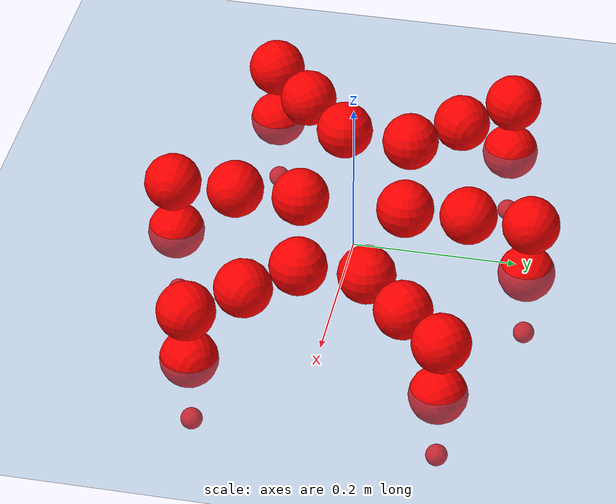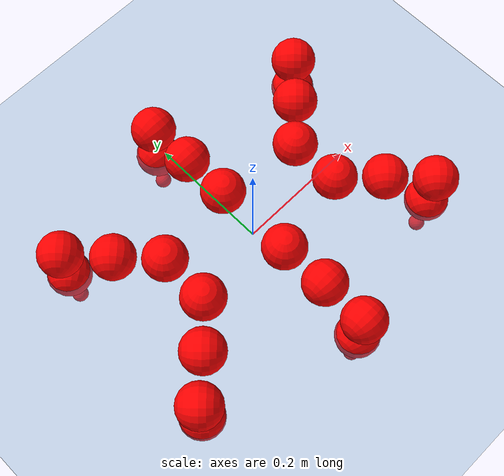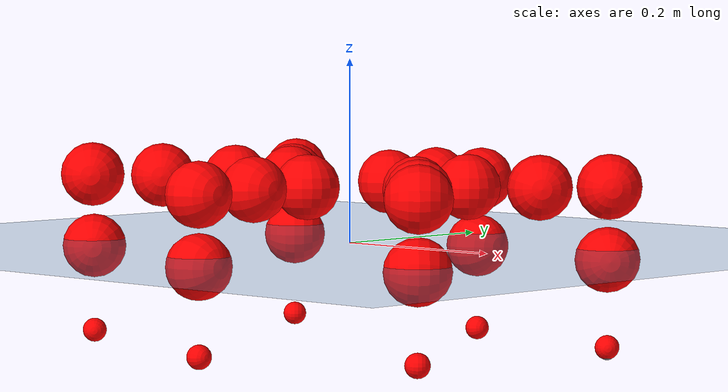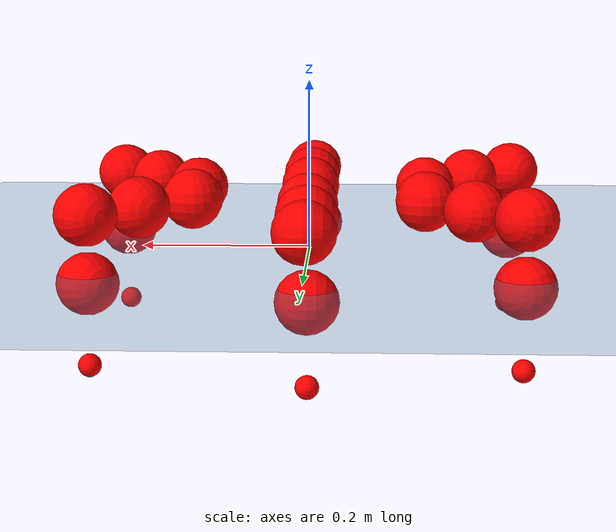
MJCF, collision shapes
<mujoco model="Golem">
  <compiler angle="radian" assetdir="assets" balanceinertia="true" inertiafromgeom="false"/>

  <option timestep="0.005" density="1.2" viscosity="2e-05"/>

  <size nkey="1"/>

  <visual>
    <quality shadowsize="8192"/>
    <map shadowclip="0.5"/>
  </visual>

  <default>
    <default class="/">
      <joint armature="0.01" damping="0.01" frictionloss="0.01"/>
      <geom contype="0" conaffinity="0" group="1" solref="-1000 -80"/>
      <site size="0.01 0.005 0.005" group="5"/>
      <general forcelimited="true" biastype="affine" gainprm="25" biasprm="0 -25 -0.5"/>
      <default class="visual">
        <geom type="mesh" group="2"/>
      </default>
      <default class="collision">
        <geom group="3"/>
      </default>
      <default class="foot">
        <geom size="0.01 0 0" condim="6" group="4" priority="1" solimp="0.015 1 0.01"/>
      </default>
      <default class="reward_collision_sphere">
        <geom group="5" rgba="1 0 0 1"/>
      </default>
    </default>
  </default>

  <asset>
    <texture type="skybox" colorspace="auto" name="//unnamed_texture_0" builtin="gradient" rgb1="0.95 0.95 0.95" rgb2="0.95 0.95 0.95" width="100" height="600"/>
    <texture type="2d" colorspace="auto" name="texplane" builtin="checker" rgb1="0.345 0.575 0.748" rgb2="0.345 0.575 0.748" markrgb="1 1 1" width="512" height="512"/>
    <material name="MatPlane" class="/" texture="texplane" texuniform="true" texrepeat="2 2" specular="0.9"/>
    <mesh name="body" class="/" file="body.stl" scale="0.001 0.001 0.001"/>
    <mesh name="coxa" class="/" file="coxa.stl" scale="0.001 0.001 0.001"/>
    <mesh name="femur" class="/" file="femur.stl" scale="0.001 0.001 0.001"/>
    <mesh name="tibia" class="/" file="tibia.stl" scale="0.001 0.001 0.001"/>
    <mesh name="tarsus" class="/" file="tarsus.stl" scale="0.001 0.001 0.001"/>
  </asset>

  <worldbody>
    <geom name="floor" class="/" size="100 100 0.125" type="plane" group="0" material="MatPlane"/>
    <light name="toplight_shadow" class="/" pos="0 0 5" dir="0.0990148 0.0990148 -0.990148" type="directional" ambient="0.04 0.04 0.04" diffuse="0.55 0.55 0.55" specular="0.12 0.12 0.12"/>
    <light name="toplight_fill" class="/" pos="0 0 5" dir="0.0990148 0.0990148 -0.990148" type="directional" castshadow="false" ambient="0.04 0.04 0.04" diffuse="0.3 0.3 0.3" specular="0.08 0.08 0.08"/>
    <body name="trunk" pos="-1.78132e-05 -2.95593e-05 -0.00178305" quat="0.999999 -0.00113422 -0.000326061 -0.000526025">
      <inertial pos="0.000306023 0.00224725 -0.00396265" quat="0.999932 0.00977684 -0.00598776 -0.0021564" mass="2.56473" diaginertia="0.00530281 0.00177601 0.0137409"/>
      <joint name="//unnamed_joint_0" type="free"/>
      <geom name="//unnamed_geom_1" class="/" pos="0 0 0.0676455" quat="1 0 0 0" type="mesh" rgba="0.9 0.9 0.9 1" mesh="body"/>
      <site name="imu" class="/" pos="0.101346 0.000692429 0.11742" size="0.00880451"/>
      <camera name="track" class="/" pos="0 -1.41795 0" quat="0.707107 0.707107 0 0" mode="trackcom"/>
      <camera name="ego_camera" class="/" pos="0.113804 0 0.105696" quat="-0.5 -0.5 0.5 0.5"/>
      <body name="coxa_RR" pos="-0.15741 -0.0575342 0.0697862" quat="0.382604 -0.000257787 0.000257491 -0.923912">
        <inertial pos="-0.00135294 -0.00274184 -0.000660164" quat="0.999935 -0.00100045 -0.0113746 0.000453978" mass="0.141591" diaginertia="0.00511785 0.00178492 0.0131086"/>
        <joint name="coxa_joint_RR" class="/" pos="0 0 0" axis="0.00188886 -0.00889422 -0.999959" range="-3.1908 3.13952" armature="0.00820922" damping="0.0186887" frictionloss="0.00980344"/>
        <geom name="//unnamed_geom_2" class="/" type="mesh" rgba="0.2 0.2 0.2 1" mesh="coxa"/>
        <geom name="//unnamed_geom_3" class="reward_collision_sphere" size="0.0352181" pos="-0.0262626 0 0"/>
        <body name="femur_RR" pos="0.0543216 0.00139245 0.00176413" quat="0.500046 -0.499946 0.499997 0.500011">
          <inertial pos="0.00112064 -0.00229358 0.00182155" quat="1 0.000911463 0.000162833 0.000355914" mass="0.134572" diaginertia="0.00511166 0.00176715 0.0127894"/>
          <joint name="femur_joint_RR" class="/" pos="0 0 0" axis="0.00833936 0.00746374 -0.999937" range="-3.11236 3.13186" armature="0.00773056" damping="0" frictionloss="0.00811153"/>
          <geom name="//unnamed_geom_4" class="/" type="mesh" rgba="0.9 0.9 0.9 1" mesh="femur"/>
          <geom name="//unnamed_geom_5" class="reward_collision_sphere" size="0.0352181"/>
          <body name="tibia_RR" pos="-0.000819842 -0.077838 -0.00272021" quat="-3.5176e-05 1 2.11038e-05 3.71634e-05">
            <inertial pos="-0.00259232 0.00216377 -0.00180628" quat="0.999939 -0.0106297 0.00291403 -0.00046721" mass="0.13364" diaginertia="0.00482168 0.00171946 0.0127743"/>
            <joint name="tibia_joint_RR" class="/" pos="0 0 0" axis="-0.00488883 0.00332521 0.999983" range="-3.1371 3.08391" armature="0.00903425" damping="0.0185001" frictionloss="0.00852573"/>
            <geom name="//unnamed_geom_6" class="/" type="mesh" rgba="0.2 0.2 0.2 1" mesh="tibia"/>
            <geom name="//unnamed_geom_7" class="reward_collision_sphere" size="0.0352181"/>
            <body name="tarsus_RR" pos="0.0793652 -0.0016384 -7.79955e-05" quat="0.999999 0.000768034 0.000655991 0.000102411">
              <inertial pos="0.0547155 -0.00116587 0.00219929" quat="0.498988 0.501086 0.500499 0.499423" mass="0.13812" diaginertia="0.00514162 0.00191262 0.0135461"/>
              <joint name="tarsus_joint_RR" class="/" pos="0 0 0" axis="-0.00235918 -0.00458532 0.999987" range="-3.14236 3.15888" armature="0.00889999" damping="5.91864e-05" frictionloss="0.00890177"/>
              <geom name="//unnamed_geom_8" class="/" type="mesh" rgba="0.9 0.9 0.9 1" mesh="tarsus"/>
              <geom name="foot_1" class="foot" size="0.00893915" pos="0.0980469 0 0" quat="0 -0.707107 0 0.707107"/>
              <geom name="//unnamed_geom_10" class="reward_collision_sphere" size="0.0352181"/>
              <geom name="//unnamed_geom_11" class="reward_collision_sphere" size="0.0132068" pos="0.0941075 0 0"/>
              <site name="foot_1" class="foot" pos="0.0980469 0 0" quat="0 -0.707107 0 0.707107" size="0.00880451"/>
            </body>
          </body>
        </body>
      </body>
      <body name="coxa_RM" pos="0.000977188 -0.0920766 0.0654842" quat="0.707731 0.00036315 3.37341e-05 -0.706482">
        <inertial pos="0.000500579 -0.00278608 -0.00068695" quat="0.999976 0.00472639 -0.00460217 -0.00232358" mass="0.131401" diaginertia="0.00480096 0.00168347 0.0130884"/>
        <joint name="coxa_joint_RM" class="/" pos="0 0 0" axis="-0.00295871 -0.00202732 -0.999994" stiffness="0.00579279" range="-3.14424 3.14546" armature="0.00775977" damping="0.0112171" frictionloss="0.010053"/>
        <geom name="//unnamed_geom_12" class="/" type="mesh" rgba="0.2 0.2 0.2 1" mesh="coxa"/>
        <geom name="//unnamed_geom_13" class="reward_collision_sphere" size="0.0352181" pos="-0.0262626 0 0"/>
        <body name="femur_RM" pos="0.0546078 0.0011474 0.00106764" quat="0.499822 -0.499866 0.50014 0.500172">
          <inertial pos="-0.000516 -0.00285977 -0.000808135" quat="0.999969 -0.00528457 0.000673258 0.00582049" mass="0.139248" diaginertia="0.00529443 0.00174067 0.0133926"/>
          <joint name="femur_joint_RM" class="/" pos="0 0 0" axis="-0.00940169 -0.00182753 -0.999954" range="-3.18834 3.1872" armature="0.00942123" damping="0.0229623" frictionloss="0.00921157"/>
          <geom name="//unnamed_geom_14" class="/" type="mesh" rgba="0.9 0.9 0.9 1" mesh="femur"/>
          <geom name="//unnamed_geom_15" class="reward_collision_sphere" size="0.0352181"/>
          <body name="tibia_RM" pos="0.00161952 -0.0784307 -0.000828409" quat="-0.000228336 1 -7.51976e-05 -5.93556e-05">
            <inertial pos="-0.00173064 -0.00106639 -0.00194629" quat="0.999922 -0.00609965 0.00571962 0.00925707" mass="0.129148" diaginertia="0.00511716 0.00174028 0.0131158"/>
            <joint name="tibia_joint_RM" class="/" pos="0 0 0" axis="-0.000304275 -0.00107062 0.999999" stiffness="0.00729427" range="-3.19003 3.09187" armature="0.00762858" damping="0" frictionloss="0.00800069"/>
            <geom name="//unnamed_geom_16" class="/" type="mesh" rgba="0.2 0.2 0.2 1" mesh="tibia"/>
            <geom name="//unnamed_geom_17" class="reward_collision_sphere" size="0.0352181"/>
            <body name="tarsus_RM" pos="0.0753814 -0.00169514 0.00161747" quat="0.999999 0.000155678 0.000493487 0.00111174">
              <inertial pos="0.0500356 -9.09185e-05 -0.00213704" quat="0.493941 0.497181 0.511511 0.497181" mass="0.136773" diaginertia="0.00512747 0.00179098 0.0131326"/>
              <joint name="tarsus_joint_RM" class="/" pos="0 0 0" axis="-0.000251501 0.00111971 0.999999" range="-3.1604 3.15054" armature="0.00902545" damping="0.00437972" frictionloss="0.00874766"/>
              <geom name="//unnamed_geom_18" class="/" type="mesh" rgba="0.9 0.9 0.9 1" mesh="tarsus"/>
              <geom name="foot_2" class="foot" size="0.00811449" pos="0.0980469 0 0" quat="0 -0.707107 0 0.707107"/>
              <geom name="//unnamed_geom_20" class="reward_collision_sphere" size="0.0352181"/>
              <geom name="//unnamed_geom_21" class="reward_collision_sphere" size="0.0132068" pos="0.0941075 0 0"/>
              <site name="foot_2" class="foot" pos="0.0980469 0 0" quat="0 -0.707107 0 0.707107" size="0.00880451"/>
            </body>
          </body>
        </body>
      </body>
      <body name="coxa_RF" pos="0.15468 -0.0583325 0.0676049" quat="0.923912 0.000921502 -0.000191049 -0.382605">
        <inertial pos="0.00187848 -0.00209526 3.36414e-05" quat="0.999995 -0.00240301 0.00194906 0.00020347" mass="0.138021" diaginertia="0.00532187 0.00182559 0.0131066"/>
        <joint name="coxa_joint_RF" class="/" pos="0 0 0" axis="-0.0084808 0.000617519 -0.999964" range="-3.14583 3.14306" armature="0.00875783" damping="0" frictionloss="0.00783905"/>
        <geom name="//unnamed_geom_22" class="/" type="mesh" rgba="0.2 0.2 0.2 1" mesh="coxa"/>
        <geom name="//unnamed_geom_23" class="reward_collision_sphere" size="0.0352181" pos="-0.0262626 0 0"/>
        <body name="femur_RF" pos="0.0504388 0.000187419 0.00117794" quat="0.499823 -0.499972 0.499966 0.500239">
          <inertial pos="-0.000200111 0.000957811 -0.0023798" quat="0.999902 -0.0102879 -0.00787674 0.00534934" mass="0.13254" diaginertia="0.00497193 0.00172059 0.0129426"/>
          <joint name="femur_joint_RF" class="/" pos="0 0 0" axis="-0.00476597 0.00526036 -0.999975" range="-3.08667 3.19343" armature="0.00922485" damping="0.00687463" frictionloss="0.00915005"/>
          <geom name="//unnamed_geom_24" class="/" type="mesh" rgba="0.9 0.9 0.9 1" mesh="femur"/>
          <geom name="//unnamed_geom_25" class="reward_collision_sphere" size="0.0352181"/>
          <body name="tibia_RF" pos="0.00083278 -0.0766878 -0.00238333" quat="3.97431e-05 1 5.97358e-06 -3.27553e-05">
            <inertial pos="0.00188776 -0.00247377 0.00034932" quat="0.999932 0.00981185 0.00409688 -0.00478983" mass="0.139171" diaginertia="0.00505284 0.00179158 0.0133531"/>
            <joint name="tibia_joint_RF" class="/" pos="0 0 0" axis="-0.00320626 -0.00206687 0.999993" stiffness="0.0124416" range="-3.16046 3.08972" armature="0.00893475" damping="0.0114383" frictionloss="0.00886739"/>
            <geom name="//unnamed_geom_26" class="/" type="mesh" rgba="0.2 0.2 0.2 1" mesh="tibia"/>
            <geom name="//unnamed_geom_27" class="reward_collision_sphere" size="0.0352181"/>
            <body name="tarsus_RF" pos="0.0732586 -0.00223939 0.000736543" quat="0.999999 0.00022908 -0.00134144 -0.000274146">
              <inertial pos="0.0533011 -0.00102252 0.000713353" quat="0.49998 0.499897 0.500011 0.500113" mass="0.13449" diaginertia="0.00522135 0.0018123 0.0128797"/>
              <joint name="tarsus_joint_RF" class="/" pos="0 0 0" axis="0.00313878 -0.00151467 0.999994" stiffness="0.0004212" range="-3.12953 3.12985" armature="0.00890214" damping="0" frictionloss="0.00902551"/>
              <geom name="//unnamed_geom_28" class="/" type="mesh" rgba="0.9 0.9 0.9 1" mesh="tarsus"/>
              <geom name="foot_3" class="foot" size="0.00891916" pos="0.0980469 0 0" quat="0 -0.707107 0 0.707107"/>
              <geom name="//unnamed_geom_30" class="reward_collision_sphere" size="0.0352181"/>
              <geom name="//unnamed_geom_31" class="reward_collision_sphere" size="0.0132068" pos="0.0941075 0 0"/>
              <site name="foot_3" class="foot" pos="0.0980469 0 0" quat="0 -0.707107 0 0.707107" size="0.00880451"/>
            </body>
          </body>
        </body>
      </body>
      <body name="coxa_LR" pos="-0.155357 0.0634266 0.0657924" quat="0.382752 0.000158879 -9.49575e-05 0.923851">
        <inertial pos="-0.000444983 -0.00236055 -0.00234567" quat="0.999903 -0.0126722 0.000204379 0.00571792" mass="0.130694" diaginertia="0.00506179 0.001821 0.0130874"/>
        <joint name="coxa_joint_LR" class="/" pos="0 0 0" axis="0.0102052 0.00129516 -0.999947" stiffness="0.0149393" range="-3.14456 3.14613" armature="0.00974836" damping="0.012699" frictionloss="0.00997061"/>
        <geom name="//unnamed_geom_32" class="/" type="mesh" rgba="0.2 0.2 0.2 1" mesh="coxa"/>
        <geom name="//unnamed_geom_33" class="reward_collision_sphere" size="0.0352181" pos="-0.0262626 0 0"/>
        <body name="femur_LR" pos="0.0506063 -0.00197825 -0.00112158" quat="0.499413 -0.499305 0.500478 0.500802">
          <inertial pos="0.00101177 -0.00251066 -0.00136096" quat="0.999909 -0.00252328 0.0115199 0.00658749" mass="0.137657" diaginertia="0.0050118 0.00174887 0.0129089"/>
          <joint name="femur_joint_LR" class="/" pos="0 0 0" axis="-0.00224103 -0.00471071 0.999986" range="-3.1282 3.13499" armature="0.0100616" damping="0.0161982" frictionloss="0.00906167"/>
          <geom name="//unnamed_geom_34" class="/" type="mesh" rgba="0.9 0.9 0.9 1" mesh="femur"/>
          <geom name="//unnamed_geom_35" class="reward_collision_sphere" size="0.0352181"/>
          <body name="tibia_LR" pos="-0.00233578 -0.0775314 -0.00335295" quat="0.000109628 1 -0.000405189 3.00412e-05">
            <inertial pos="0.000702477 0.00225026 0.00150703" quat="0.999995 -0.0013649 -0.00186616 -0.00198947" mass="0.140732" diaginertia="0.00519641 0.00185307 0.0140536"/>
            <joint name="tibia_joint_LR" class="/" pos="0 0 0" axis="0.001278 0.00261746 -0.999996" range="-3.09082 3.12753" armature="0.00912959" damping="0.00849399" frictionloss="0.010045"/>
            <geom name="//unnamed_geom_36" class="/" type="mesh" rgba="0.2 0.2 0.2 1" mesh="tibia"/>
            <geom name="//unnamed_geom_37" class="reward_collision_sphere" size="0.0352181"/>
            <body name="tarsus_LR" pos="0.0768569 -0.000485548 -0.0017731" quat="1 -0.000136872 8.63224e-05 -0.000425607">
              <inertial pos="0.0538737 0.000732068 -0.00034179" quat="0.499806 0.499606 0.499811 0.500776" mass="0.135857" diaginertia="0.00536679 0.00180208 0.0132506"/>
              <joint name="tarsus_joint_LR" class="/" pos="0 0 0" axis="-0.00114871 -0.00122363 -0.999999" range="-3.08379 3.0833" armature="0.00753637" damping="0.0172098" frictionloss="0.00879199"/>
              <geom name="//unnamed_geom_38" class="/" type="mesh" rgba="0.9 0.9 0.9 1" mesh="tarsus"/>
              <geom name="foot_4" class="foot" size="0.00865422" pos="0.0980469 0 0" quat="0.707107 0 -0.707107 0"/>
              <geom name="//unnamed_geom_40" class="reward_collision_sphere" size="0.0352181"/>
              <geom name="//unnamed_geom_41" class="reward_collision_sphere" size="0.0132068" pos="0.0941075 0 0"/>
              <site name="foot_4" class="foot" pos="0.0980469 0 0" quat="0.707107 0 -0.707107 0" size="0.00880451"/>
            </body>
          </body>
        </body>
      </body>
      <body name="coxa_LM" pos="-0.000435038 0.0896189 0.0659036" quat="0.707207 -0.000429099 -0.000301591 0.707007">
        <inertial pos="0.000520098 -0.00193453 0.000840305" quat="0.999915 -0.00893342 -0.00675389 0.00664148" mass="0.140396" diaginertia="0.00498434 0.00177891 0.012951"/>
        <joint name="coxa_joint_LM" class="/" pos="0 0 0" axis="-0.00138611 0.0115496 -0.999932" range="-3.12012 3.10213" armature="0.00820697" damping="0.0213199" frictionloss="0.00868815"/>
        <geom name="//unnamed_geom_42" class="/" type="mesh" rgba="0.2 0.2 0.2 1" mesh="coxa"/>
        <geom name="//unnamed_geom_43" class="reward_collision_sphere" size="0.0352181" pos="-0.0262626 0 0"/>
        <body name="femur_LM" pos="0.0511214 0.00180586 -1.86663e-05" quat="0.500067 -0.499946 0.500047 0.49994">
          <inertial pos="-0.00121736 0.00267528 -0.00289074" quat="0.999987 0.00275725 -0.00270105 0.00341552" mass="0.137501" diaginertia="0.00493259 0.00181328 0.0130419"/>
          <joint name="femur_joint_LM" class="/" pos="0 0 0" axis="0.009655 -0.00517747 0.99994" stiffness="0.0106865" range="-3.13952 3.13934" armature="0.00883689" damping="0" frictionloss="0.009947"/>
          <geom name="//unnamed_geom_44" class="/" type="mesh" rgba="0.9 0.9 0.9 1" mesh="femur"/>
          <geom name="//unnamed_geom_45" class="reward_collision_sphere" size="0.0352181"/>
          <body name="tibia_LM" pos="0.0033016 -0.0763305 0.000509569" quat="0.00051575 1 0.00021101 0.000386022">
            <inertial pos="0.00050331 -0.000127438 0.00277537" quat="0.999916 0.000227736 -0.0128853 0.00135718" mass="0.135265" diaginertia="0.00522221 0.00180969 0.0129073"/>
            <joint name="tibia_joint_LM" class="/" pos="0 0 0" axis="-0.00444901 0.00354086 -0.999984" stiffness="0.0118643" range="-3.1559 3.18138" armature="0.00885965" damping="0" frictionloss="0.00987772"/>
            <geom name="//unnamed_geom_46" class="/" type="mesh" rgba="0.2 0.2 0.2 1" mesh="tibia"/>
            <geom name="//unnamed_geom_47" class="reward_collision_sphere" size="0.0352181"/>
            <body name="tarsus_LM" pos="0.0761341 -0.00336538 -0.00287595" quat="1 -2.71447e-05 -1.8843e-05 -7.67277e-06">
              <inertial pos="0.0542059 -0.00116883 -0.0015925" quat="0.499984 0.500021 0.499976 0.500019" mass="0.136596" diaginertia="0.00513457 0.00178777 0.0138224"/>
              <joint name="tarsus_joint_LM" class="/" pos="0 0 0" axis="-0.000242657 0.00499651 -0.999987" range="-3.11902 3.15436" armature="0.00872778" damping="0.00505103" frictionloss="0.00831197"/>
              <geom name="//unnamed_geom_48" class="/" type="mesh" rgba="0.9 0.9 0.9 1" mesh="tarsus"/>
              <geom name="foot_5" class="foot" size="0.00898537" pos="0.0980469 0 0" quat="0.707107 0 -0.707107 0"/>
              <geom name="//unnamed_geom_50" class="reward_collision_sphere" size="0.0352181"/>
              <geom name="//unnamed_geom_51" class="reward_collision_sphere" size="0.0132068" pos="0.0941075 0 0"/>
              <site name="foot_5" class="foot" pos="0.0980469 0 0" quat="0.707107 0 -0.707107 0" size="0.00880451"/>
            </body>
          </body>
        </body>
      </body>
      <body name="coxa_LF" pos="0.15317 0.0608754 0.0669377" quat="0.923835 -9.9192e-05 -2.09973e-06 0.382791">
        <inertial pos="0.00275752 0.00148809 0.0019252" quat="0.999963 -0.00300252 0.00572688 -0.00573356" mass="0.134688" diaginertia="0.00517289 0.00180535 0.013191"/>
        <joint name="coxa_joint_LF" class="/" pos="0 0 0" axis="7.63007e-05 -3.31585e-05 -1" stiffness="0.00308775" range="-3.14976 3.096" armature="0.00773894" damping="0.00524775" frictionloss="0.00926261"/>
        <geom name="//unnamed_geom_52" class="/" type="mesh" rgba="0.2 0.2 0.2 1" mesh="coxa"/>
        <geom name="//unnamed_geom_53" class="reward_collision_sphere" size="0.0352181" pos="-0.0262626 0 0"/>
        <body name="femur_LF" pos="0.0508258 -0.000918948 -0.000760306" quat="0.500189 -0.500131 0.499435 0.500243">
          <inertial pos="-0.0024286 0.00270734 0.00042084" quat="0.999936 0.00590925 -0.00922966 -0.00262523" mass="0.13369" diaginertia="0.00497761 0.00176539 0.0131726"/>
          <joint name="femur_joint_LF" class="/" pos="0 0 0" axis="0.00373112 -0.00933508 0.999949" range="-3.18037 3.11912" armature="0.00892299" damping="0" frictionloss="0.00873966"/>
          <geom name="//unnamed_geom_54" class="/" type="mesh" rgba="0.9 0.9 0.9 1" mesh="femur"/>
          <geom name="//unnamed_geom_55" class="reward_collision_sphere" size="0.0352181"/>
          <body name="tibia_LF" pos="-0.00085809 -0.0744265 0.00179021" quat="0.000556593 0.999999 -0.000203807 -0.00119076">
            <inertial pos="-0.00245068 0.00022462 0.000451158" quat="0.999995 0.00301447 -0.000753589 -0.000340454" mass="0.139134" diaginertia="0.00496618 0.00177606 0.0129183"/>
            <joint name="tibia_joint_LF" class="/" pos="0 0 0" axis="-2.96347e-05 -9.81343e-06 -1" stiffness="0.0106931" range="-3.1452 3.18749" armature="0.00836194" damping="0.0104792" frictionloss="0.00886904"/>
            <geom name="//unnamed_geom_56" class="/" type="mesh" rgba="0.2 0.2 0.2 1" mesh="tibia"/>
            <geom name="//unnamed_geom_57" class="reward_collision_sphere" size="0.0352181"/>
            <body name="tarsus_LF" pos="0.0779469 -0.00185043 0.0012369" quat="1 0.000219467 9.41901e-05 -0.000179557">
              <inertial pos="0.0500779 -0.00194734 -0.00285809" quat="0.497839 0.501305 0.502466 0.498375" mass="0.130369" diaginertia="0.00506334 0.00175481 0.0131251"/>
              <joint name="tarsus_joint_LF" class="/" pos="0 0 0" axis="0.0130993 0.000404703 -0.999914" range="-3.1602 3.19293" armature="0.00767991" damping="0.0165767" frictionloss="0.0084903"/>
              <geom name="//unnamed_geom_58" class="/" type="mesh" rgba="0.9 0.9 0.9 1" mesh="tarsus"/>
              <geom name="foot_6" class="foot" size="0.00973611" pos="0.0980469 0 0" quat="0.707107 0 -0.707107 0"/>
              <geom name="//unnamed_geom_60" class="reward_collision_sphere" size="0.0352181"/>
              <geom name="//unnamed_geom_61" class="reward_collision_sphere" size="0.0132068" pos="0.0941075 0 0"/>
              <site name="foot_6" class="foot" pos="0.0980469 0 0" quat="0.707107 0 -0.707107 0" size="0.00880451"/>
            </body>
          </body>
        </body>
      </body>
    </body>
  </worldbody>

  <contact>
    <pair class="/" geom1="floor" geom2="foot_1" name="//unnamed_contact_0"/>
    <pair class="/" geom1="floor" geom2="foot_2" name="//unnamed_contact_1"/>
    <pair class="/" geom1="floor" geom2="foot_3" name="//unnamed_contact_2"/>
    <pair class="/" geom1="floor" geom2="foot_4" name="//unnamed_contact_3"/>
    <pair class="/" geom1="floor" geom2="foot_5" name="//unnamed_contact_4"/>
    <pair class="/" geom1="floor" geom2="foot_6" name="//unnamed_contact_5"/>
  </contact>

  <actuator>
    <general name="coxa_joint_RR" class="/" joint="coxa_joint_RR" forcerange="-6.68141 6.68141" gainprm="21.01" biasprm="0 -21.01 -0.466226"/>
    <general name="femur_joint_RR" class="/" joint="femur_joint_RR" forcerange="-7.11263 7.11263" gainprm="21.01" biasprm="0 -21.01 -0.466226"/>
    <general name="tibia_joint_RR" class="/" joint="tibia_joint_RR" forcerange="-5.88618 5.88618" gainprm="21.01" biasprm="0 -21.01 -0.466226"/>
    <general name="tarsus_joint_RR" class="/" joint="tarsus_joint_RR" forcerange="-6.95422 6.95422" gainprm="21.01" biasprm="0 -21.01 -0.466226"/>
    <general name="coxa_joint_RM" class="/" joint="coxa_joint_RM" forcerange="-6.56069 6.56069" gainprm="21.01" biasprm="0 -21.01 -0.466226"/>
    <general name="femur_joint_RM" class="/" joint="femur_joint_RM" forcerange="-6.67148 6.67148" gainprm="21.01" biasprm="0 -21.01 -0.466226"/>
    <general name="tibia_joint_RM" class="/" joint="tibia_joint_RM" forcerange="-6.9781 6.9781" gainprm="21.01" biasprm="0 -21.01 -0.466226"/>
    <general name="tarsus_joint_RM" class="/" joint="tarsus_joint_RM" forcerange="-5.89136 5.89136" gainprm="21.01" biasprm="0 -21.01 -0.466226"/>
    <general name="coxa_joint_RF" class="/" joint="coxa_joint_RF" forcerange="-7.025 7.025" gainprm="21.01" biasprm="0 -21.01 -0.466226"/>
    <general name="femur_joint_RF" class="/" joint="femur_joint_RF" forcerange="-6.45486 6.45486" gainprm="21.01" biasprm="0 -21.01 -0.466226"/>
    <general name="tibia_joint_RF" class="/" joint="tibia_joint_RF" forcerange="-6.51406 6.51406" gainprm="21.01" biasprm="0 -21.01 -0.466226"/>
    <general name="tarsus_joint_RF" class="/" joint="tarsus_joint_RF" forcerange="-6.38763 6.38763" gainprm="21.01" biasprm="0 -21.01 -0.466226"/>
    <general name="coxa_joint_LR" class="/" joint="coxa_joint_LR" forcerange="-6.86144 6.86144" gainprm="21.01" biasprm="0 -21.01 -0.466226"/>
    <general name="femur_joint_LR" class="/" joint="femur_joint_LR" forcerange="-6.43447 6.43447" gainprm="21.01" biasprm="0 -21.01 -0.466226"/>
    <general name="tibia_joint_LR" class="/" joint="tibia_joint_LR" forcerange="-7.08548 7.08548" gainprm="21.01" biasprm="0 -21.01 -0.466226"/>
    <general name="tarsus_joint_LR" class="/" joint="tarsus_joint_LR" forcerange="-6.78388 6.78388" gainprm="21.01" biasprm="0 -21.01 -0.466226"/>
    <general name="coxa_joint_LM" class="/" joint="coxa_joint_LM" forcerange="-5.86362 5.86362" gainprm="21.01" biasprm="0 -21.01 -0.466226"/>
    <general name="femur_joint_LM" class="/" joint="femur_joint_LM" forcerange="-6.80003 6.80003" gainprm="21.01" biasprm="0 -21.01 -0.466226"/>
    <general name="tibia_joint_LM" class="/" joint="tibia_joint_LM" forcerange="-6.90514 6.90514" gainprm="21.01" biasprm="0 -21.01 -0.466226"/>
    <general name="tarsus_joint_LM" class="/" joint="tarsus_joint_LM" forcerange="-6.61371 6.61371" gainprm="21.01" biasprm="0 -21.01 -0.466226"/>
    <general name="coxa_joint_LF" class="/" joint="coxa_joint_LF" forcerange="-5.76112 5.76112" gainprm="21.01" biasprm="0 -21.01 -0.466226"/>
    <general name="femur_joint_LF" class="/" joint="femur_joint_LF" forcerange="-5.75241 5.75241" gainprm="21.01" biasprm="0 -21.01 -0.466226"/>
    <general name="tibia_joint_LF" class="/" joint="tibia_joint_LF" forcerange="-6.02514 6.02514" gainprm="21.01" biasprm="0 -21.01 -0.466226"/>
    <general name="tarsus_joint_LF" class="/" joint="tarsus_joint_LF" forcerange="-5.80674 5.80674" gainprm="21.01" biasprm="0 -21.01 -0.466226"/>
  </actuator>

  <sensor>
    <gyro site="imu" name="imu_angular_velocity"/>
    <velocimeter site="imu" name="imu_linear_velocity"/>
    <framelinvel objtype="site" objname="foot_1" name="foot_1_global_linear_velocity"/>
    <framelinvel objtype="site" objname="foot_2" name="foot_2_global_linear_velocity"/>
    <framelinvel objtype="site" objname="foot_3" name="foot_3_global_linear_velocity"/>
    <framelinvel objtype="site" objname="foot_4" name="foot_4_global_linear_velocity"/>
    <framelinvel objtype="site" objname="foot_5" name="foot_5_global_linear_velocity"/>
    <framelinvel objtype="site" objname="foot_6" name="foot_6_global_linear_velocity"/>
  </sensor>

  <keyframe>
    <key name="home" qpos="0 0 0.1457 1 0 0 0 0 0 0 0 0 0 0 0 0 0 0 0 0 0 0 0 0 0 0 0 0 0 0 0"/>
  </keyframe>
</mujoco>
